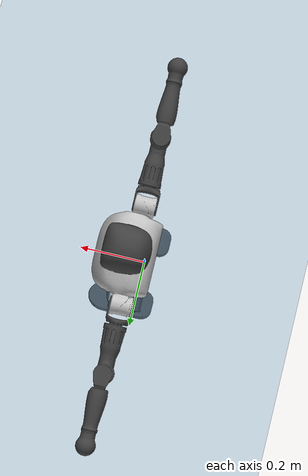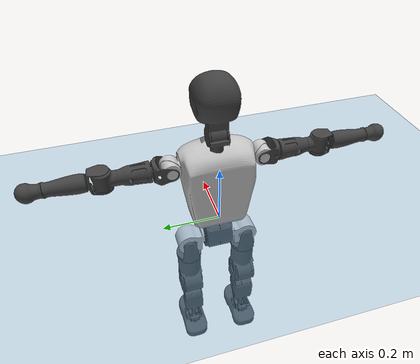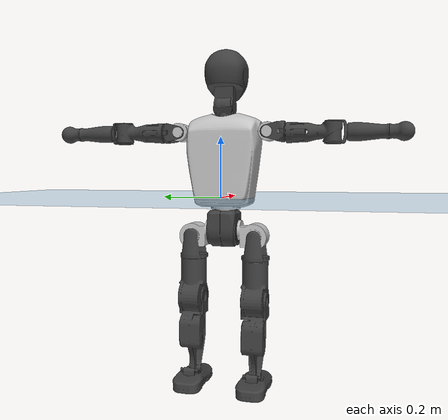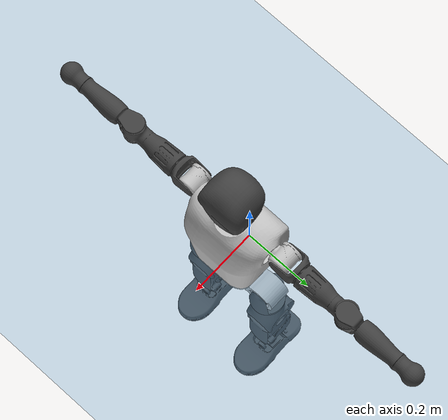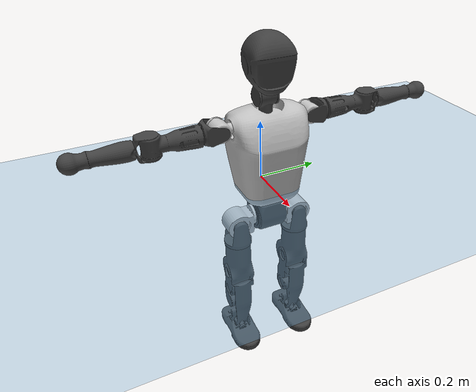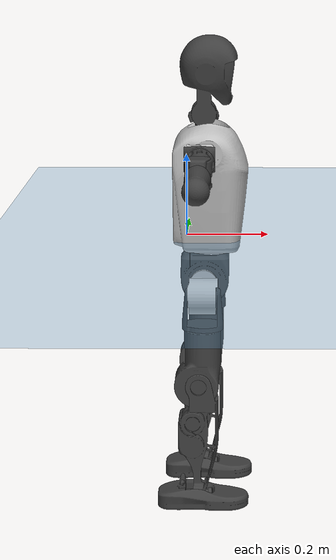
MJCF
<mujoco model="T1">
  <compiler angle="radian" assetdir="assets" balanceinertia="true" inertiafromgeom="false"/>

  <option timestep="0.005" density="1.2" viscosity="2e-05"/>

  <size nkey="1"/>

  <visual>
    <quality shadowsize="8192"/>
    <map shadowclip="0.5"/>
  </visual>

  <default>
    <default class="/">
      <joint armature="0.01" damping="0.01" frictionloss="0.1"/>
      <geom contype="0" conaffinity="0" group="1" solref="-1000 -80"/>
      <site size="0.01 0.005 0.005" group="5"/>
      <general forcelimited="true" biastype="affine" gainprm="25" biasprm="0 -25 -0.6"/>
      <default class="t1">
        <geom rgba="0.25 0.25 0.25 1"/>
        <default class="visual">
          <geom type="mesh" group="2"/>
        </default>
        <default class="collision">
          <geom group="3"/>
        </default>
        <default class="foot">
          <geom size="0.1115 0.05 0.015" type="box" condim="6" group="4" priority="1" solimp="0.015 1 0.015"/>
        </default>
        <default class="reward_collision_sphere">
          <geom group="5" rgba="1 0 0 1"/>
        </default>
      </default>
    </default>
  </default>

  <asset>
    <texture type="skybox" colorspace="auto" name="//unnamed_texture_0" builtin="gradient" rgb1="0.95 0.95 0.95" rgb2="0.95 0.95 0.95" width="100" height="600"/>
    <texture type="2d" colorspace="auto" name="texplane" builtin="checker" rgb1="0.345 0.575 0.748" rgb2="0.345 0.575 0.748" markrgb="1 1 1" width="512" height="512"/>
    <material name="MatPlane" class="/" texture="texplane" texuniform="true" texrepeat="2 2" specular="0.9"/>
    <mesh name="Trunk" class="/" file="Trunk.stl"/>
    <mesh name="H1" class="/" file="H1.stl"/>
    <mesh name="H2" class="/" file="H2.stl"/>
    <mesh name="AL1" class="/" file="AL1.stl"/>
    <mesh name="AL2" class="/" file="AL2.stl"/>
    <mesh name="AL3" class="/" file="AL3.stl"/>
    <mesh name="left_hand_link" class="/" file="left_hand_link.stl"/>
    <mesh name="AR1" class="/" file="AR1.stl"/>
    <mesh name="AR2" class="/" file="AR2.stl"/>
    <mesh name="AR3" class="/" file="AR3.stl"/>
    <mesh name="right_hand_link" class="/" file="right_hand_link.stl"/>
    <mesh name="Waist" class="/" file="Waist.stl"/>
    <mesh name="Hip_Pitch_Left" class="/" file="Hip_Pitch_Left.stl"/>
    <mesh name="Hip_Roll_Left" class="/" file="Hip_Roll_Left.stl"/>
    <mesh name="Hip_Yaw_Left" class="/" file="Hip_Yaw_Left.stl"/>
    <mesh name="Shank_Left" class="/" file="Shank_Left.stl"/>
    <mesh name="Ankle_Cross_Left" class="/" file="Ankle_Cross_Left.stl"/>
    <mesh name="left_foot_link" class="/" file="left_foot_link.stl"/>
    <mesh name="Hip_Pitch_Right" class="/" file="Hip_Pitch_Right.stl"/>
    <mesh name="Hip_Roll_Right" class="/" file="Hip_Roll_Right.stl"/>
    <mesh name="Hip_Yaw_Right" class="/" file="Hip_Yaw_Right.stl"/>
    <mesh name="Shank_Right" class="/" file="Shank_Right.stl"/>
    <mesh name="Ankle_Cross_Right" class="/" file="Ankle_Cross_Right.stl"/>
    <mesh name="right_foot_link" class="/" file="right_foot_link.stl"/>
  </asset>

  <worldbody>
    <geom name="floor" class="/" size="100 100 0.125" type="plane" group="0" material="MatPlane"/>
    <light name="toplight_shadow" class="/" pos="0 0 5" dir="0.0990148 0.0990148 -0.990148" type="directional" ambient="0.04 0.04 0.04" diffuse="0.55 0.55 0.55" specular="0.12 0.12 0.12"/>
    <light name="toplight_fill" class="/" pos="0 0 5" dir="0.0990148 0.0990148 -0.990148" type="directional" castshadow="false" ambient="0.04 0.04 0.04" diffuse="0.3 0.3 0.3" specular="0.08 0.08 0.08"/>
    <body name="trunk" childclass="t1" pos="-0.00268418 -0.00193457 0.00280976" quat="0.999999 0.00080633 0.000735864 -0.000848041">
      <inertial pos="0.0380258 -0.0030825 0.105808" quat="0.999932 -0.00119471 -0.0115564 -0.00102543" mass="8.6065" diaginertia="0.0159824 0.0839194 0.05144"/>
      <joint name="//unnamed_joint_0" type="free" armature="0" damping="0" frictionloss="0"/>
      <geom name="//unnamed_geom_1" class="visual" rgba="0.76 0.76 0.76 1" mesh="Trunk"/>
      <geom name="//unnamed_geom_2" class="collision" size="0.0672312 0.0896417 0.134462" pos="0.0419492 0 0.117664" type="box"/>
      <geom name="//unnamed_geom_3" class="reward_collision_sphere" size="0.103088" pos="0.0419492 0 0.098053"/>
      <geom name="//unnamed_geom_4" class="reward_collision_sphere" size="0.0134462" pos="0.0419492 0.0858132 0"/>
      <geom name="//unnamed_geom_5" class="reward_collision_sphere" size="0.0134462" pos="0.0419492 -0.0858132 0"/>
      <geom name="//unnamed_geom_6" class="reward_collision_sphere" size="0.0134462" pos="0.0419492 0.108024 0.176495"/>
      <geom name="//unnamed_geom_7" class="reward_collision_sphere" size="0.0134462" pos="0.0419492 -0.108024 0.176495"/>
      <site name="imu" pos="-0.0132994 -0.00578357 -0.00505491" size="0.00896417"/>
      <camera name="track" pos="0 -2.01913 0" quat="0.707107 0.707107 0 0" mode="trackcom"/>
      <camera name="ego_camera" pos="0.0852967 0 0.411823" quat="-0.5 -0.5 0.5 0.5"/>
      <body name="H1" pos="0.0443218 -0.000260686 0.238437" quat="0.999999 -0.000456593 -0.00118748 -0.000434039">
        <inertial pos="0.00164179 -0.00219655 0.0590296" quat="0.763056 -0.0145235 0.000869537 0.646168" mass="0.328575" diaginertia="4.13395e-05 0.000245657 0.000133416"/>
        <joint name="AAHead_yaw" pos="0 0 0" axis="0.00298267 0.00407459 0.999987" range="-1.62302 1.57868" armature="0.0102597" damping="0.0102095" frictionloss="0.0787666"/>
        <geom name="//unnamed_geom_8" class="visual" mesh="H1"/>
        <body name="H2" pos="0.00125744 -0.000625651 0.0608502" quat="1 -9.11387e-06 -6.5445e-06 -0.000161037">
          <inertial pos="0.00440955 0.000831276 0.0965516" quat="0.98814 0.105356 -0.0796007 -0.0783771" mass="0.443098" diaginertia="0.000327103 0.0019753 0.00153331"/>
          <joint name="Head_pitch" pos="0 0 0" axis="-0.00172781 -0.999946 0.0102022" range="-1.23228 0.405484" armature="0.00932383" damping="0.00936752" frictionloss="0.078144"/>
          <geom name="//unnamed_geom_9" class="visual" mesh="H2"/>
          <geom name="//unnamed_geom_10" class="collision" size="0.0717133" pos="0.00699153 0 0.107858"/>
          <geom name="//unnamed_geom_11" class="reward_collision_sphere" size="0.0806775" pos="0.0139831 0 0.098053"/>
        </body>
      </body>
      <body name="AL1" pos="0.0382068 0.1058 0.215561" quat="0.999999 2.19831e-05 0.00149786 -0.000202212">
        <inertial pos="-0.000510048 0.047021 -0.000285623" quat="0.505705 0.495778 -0.505532 0.492853" mass="0.377931" diaginertia="0.000228629 0.00135262 0.000260518"/>
        <joint name="Left_Shoulder_Pitch" pos="0 0 0" axis="-0.0030444 0.999975 -0.00633527" stiffness="0.0158679" range="-3.30665 1.1683" armature="0.00812714" damping="0.00890772" frictionloss="0.0901068"/>
        <geom name="//unnamed_geom_12" class="visual" rgba="0.76 0.76 0.76 1" mesh="AL1"/>
        <body name="AL2" pos="-0.000533245 0.0462484 -0.001934" quat="1 -0.00028587 0.000302393 -0.000396127">
          <inertial pos="0.00110305 0.0387664 0.000208393" quat="0.48785 0.511365 -0.488221 0.512004" mass="0.114831" diaginertia="6.66913e-05 0.000351949 0.000159678"/>
          <joint name="Left_Shoulder_Roll" pos="0 0 0" axis="-0.999999 -0.00090859 0.00131428" stiffness="0.00577198" range="-1.55331 1.702" armature="0.00767782" damping="0.00858814" frictionloss="0.0944314"/>
          <geom name="//unnamed_geom_13" class="visual" mesh="AL2"/>
          <body name="AL3" pos="0.0028635 0.0609774 0.000839456" quat="1 -0.000129236 9.78352e-05 0.00018405">
            <inertial pos="8.70582e-07 0.0844661 -0.00268609" quat="0.702347 0.711721 0.00544334 0.0115054" mass="0.702905" diaginertia="0.00205241 0.0131957 0.000543591"/>
            <joint name="Left_Elbow_Pitch" pos="0 0 0" axis="-0.0007759 -0.999951 0.00986986" range="-2.28291 2.26581" armature="0.00936189" damping="0.00520688" frictionloss="0.0994805"/>
            <geom name="//unnamed_geom_14" class="visual" mesh="AL3"/>
            <geom name="//unnamed_geom_15" class="collision" size="0.0268925 0.0672312" pos="0 0.0504783 0" quat="0.707105 0.707108 0 0" type="cylinder"/>
            <geom name="//unnamed_geom_16" class="reward_collision_sphere" size="0.032271"/>
            <body name="left_hand_link" pos="0.00316058 0.148371 0.000224642" quat="0.999999 -0.000759992 -0.000202452 -0.00100798">
              <inertial pos="0.000153319 0.109998 -0.00143121" quat="0.707791 0.706422 -0.000115816 -0.000112121" mass="0.243022" diaginertia="0.0014053 0.00844981 0.000197344"/>
              <joint name="Left_Elbow_Yaw" pos="0 0 0" axis="0.0105742 -0.0132862 0.999856" stiffness="0.00887224" range="-2.44233 -0.0200555" armature="0.00809438" damping="0.00806885" frictionloss="0.101999"/>
              <geom name="//unnamed_geom_17" class="visual" mesh="left_hand_link"/>
              <geom name="//unnamed_geom_18" class="collision" size="0.0268925 0.0784365" pos="0 0.131244 0" quat="0.707105 0.707108 0 0" type="cylinder"/>
              <geom name="//unnamed_geom_19" class="reward_collision_sphere" size="0.0448208"/>
              <geom name="//unnamed_geom_20" class="reward_collision_sphere" size="0.0313746" pos="0 0.111052 0"/>
              <geom name="//unnamed_geom_21" class="reward_collision_sphere" size="0.0313746" pos="0 0.217057 0"/>
            </body>
          </body>
        </body>
      </body>
      <body name="AR1" pos="0.0386832 -0.103427 0.214453" quat="0.999999 0.00124237 0.000524459 0.000278755">
        <inertial pos="-0.00230043 -0.0464757 0.00081049" quat="0.500393 0.497214 -0.507092 0.49522" mass="0.382453" diaginertia="0.000225916 0.00137614 0.000276841"/>
        <joint name="Right_Shoulder_Pitch" pos="0 0 0" axis="-0.000893385 -0.999998 -0.00176944" stiffness="0.00686938" range="-1.26565 3.30884" armature="0.00775503" damping="0.0182251" frictionloss="0.0950632"/>
        <geom name="//unnamed_geom_22" class="visual" rgba="0.76 0.76 0.76 1" mesh="AR1"/>
        <body name="AR2" pos="-0.00101081 -0.0449755 -0.000458413" quat="1 -0.000122842 -0.000310117 0.000144754">
          <inertial pos="0.0013838 -0.0381187 -0.000373273" quat="0.505974 0.481247 -0.522443 0.489332" mass="0.122201" diaginertia="6.64601e-05 0.000368556 0.000160876"/>
          <joint name="Right_Shoulder_Roll" pos="0 0 0" axis="-1 1.24986e-05 1.88408e-05" range="-1.77942 1.59548" armature="0.00903989" damping="0.0012344" frictionloss="0.0917728"/>
          <geom name="//unnamed_geom_23" class="visual" mesh="AR2"/>
          <body name="AR3" pos="0.00211249 -0.0608823 -0.0035588" quat="1 1.31434e-05 -5.24269e-05 -0.000124985">
            <inertial pos="0.00219897 -0.0889946 -0.000358966" quat="0.707732 0.706481 -1.10164e-05 -7.5645e-05" mass="0.749212" diaginertia="0.00220964 0.0142409 0.00060011"/>
            <joint name="Right_Elbow_Pitch" pos="0 0 0" axis="0.01103 0.999926 0.00505277" range="-2.28223 2.25664" armature="0.00927677" damping="0.00946098" frictionloss="0.0853512"/>
            <geom name="//unnamed_geom_24" class="visual" mesh="AR3"/>
            <geom name="//unnamed_geom_25" class="collision" size="0.0268925 0.0672312" pos="0 -0.0504783 0" quat="0.707105 0.707108 0 0" type="cylinder"/>
            <geom name="//unnamed_geom_26" class="reward_collision_sphere" size="0.032271"/>
            <body name="right_hand_link" pos="-0.00112072 -0.148638 -0.000473758" quat="0.999999 0.000460198 -0.000233663 0.00122414">
              <inertial pos="-0.0017037 -0.109504 0.000727738" quat="0.706032 0.70818 0.000113959 0.000451104" mass="0.234494" diaginertia="0.00135524 0.00852873 0.0002028"/>
              <joint name="Right_Elbow_Yaw" pos="0 0 0" axis="-0.00866131 -0.00435938 0.999953" range="-0.0176325 2.44018" armature="0.00855053" damping="0" frictionloss="0.0984117"/>
              <geom name="//unnamed_geom_27" class="visual" mesh="right_hand_link"/>
              <geom name="//unnamed_geom_28" class="collision" size="0.0268925 0.0784365" pos="0 -0.131244 0" quat="0.707105 0.707108 0 0" type="cylinder"/>
              <geom name="//unnamed_geom_29" class="reward_collision_sphere" size="0.0448208"/>
              <geom name="//unnamed_geom_30" class="reward_collision_sphere" size="0.0313746" pos="0 -0.111052 0"/>
              <geom name="//unnamed_geom_31" class="reward_collision_sphere" size="0.0313746" pos="0 -0.217057 0"/>
            </body>
          </body>
        </body>
      </body>
      <body name="Waist" pos="0.0475614 0.00122543 -0.112555" quat="0.999999 -0.000626508 0.000845338 -0.000645181">
        <inertial pos="0.00296908 -0.00160139 0.0100684" quat="0.985159 -0.00292498 -0.171445 -0.00778957" mass="1.79125" diaginertia="0.000872403 0.00557775 0.00427387"/>
        <joint name="Waist" pos="0 0 0" axis="0.0071301 0.00439368 0.999965" stiffness="0.00807846" range="-1.56906 1.58538" armature="0.0100937" damping="0.0139095" frictionloss="0.0824142"/>
        <geom name="//unnamed_geom_32" class="visual" mesh="Waist"/>
        <body name="Hip_Pitch_Left" pos="0.00259025 0.107501 -0.00291087" quat="0.999999 -0.000115175 -0.000724293 -0.00137247">
          <inertial pos="0.000630079 -0.00478081 -0.0189001" quat="0.975108 0.22122 0.0148808 0.00227882" mass="0.753828" diaginertia="0.000296259 0.00150967 0.00116593"/>
          <joint name="Left_Hip_Pitch" pos="0 0 0" axis="-0.0148611 0.999833 0.0106567" stiffness="0.00439177" range="-1.80137 1.59147" armature="0.00924292" damping="0.00537552" frictionloss="0.0864101"/>
          <geom name="//unnamed_geom_33" class="visual" rgba="0.76 0.76 0.76 1" mesh="Hip_Pitch_Left"/>
          <body name="Hip_Roll_Left" pos="-0.00018283 0.00162706 -0.0190362" quat="0.999999 5.48498e-05 0.000558553 -0.000845629">
            <inertial pos="-0.00166517 0.00179164 -0.0519664" quat="0.714223 -0.0105766 -0.00161018 0.699837" mass="0.288029" diaginertia="0.000294677 0.00156767 0.000469904"/>
            <joint name="Left_Hip_Roll" pos="0 0 0" axis="-0.999936 -0.00167135 -0.0111723" range="-1.54996 0.256827" armature="0.00840149" damping="0.0146237" frictionloss="0.0788577"/>
            <geom name="//unnamed_geom_34" class="visual" mesh="Hip_Roll_Left"/>
            <geom name="//unnamed_geom_35" class="reward_collision_sphere" size="0.0493029"/>
            <body name="Hip_Yaw_Left" pos="-0.0019711 0.00147939 -0.078787" quat="1 -0.000744792 -0.000162463 -4.17595e-05">
              <inertial pos="-0.0046111 -9.86156e-05 -0.0877109" quat="0.697079 -0.0319919 -0.0321127 0.71556" mass="1.46845" diaginertia="0.00412998 0.0257944 0.00219611"/>
              <joint name="Left_Hip_Yaw" pos="0 0 0" axis="-0.00451445 -0.000265759 -0.99999" range="-0.948872 0.96492" armature="0.00913324" damping="0.0177631" frictionloss="0.0859975"/>
              <geom name="//unnamed_geom_36" class="visual" mesh="Hip_Yaw_Left"/>
              <geom name="//unnamed_geom_37" class="collision" size="0.0448208 0.0717133" type="cylinder"/>
              <body name="Shank_Left" pos="-0.00623341 0.00058355 -0.133248" quat="1 0.000184501 4.0859e-05 -0.000282714">
                <inertial pos="-0.002979 1.76902e-05 -0.121986" quat="0.997574 0.00118342 -0.0240425 0.0653268" mass="1.26342" diaginertia="0.00584435 0.0362505 0.0017016"/>
                <joint name="Left_Knee_Pitch" pos="0 0 0" axis="0.00294419 0.99997 0.00712418" stiffness="0.000919041" range="0.0546999 2.34326" armature="0.0100394" damping="0.0247487" frictionloss="0.0855523"/>
                <geom name="//unnamed_geom_38" class="visual" mesh="Shank_Left"/>
                <geom name="//unnamed_geom_39" class="collision" size="0.0448208 0.0672312" pos="0 0 -0.117664" type="cylinder"/>
                <geom name="//unnamed_geom_40" class="reward_collision_sphere" size="0.0582671"/>
                <body name="Ankle_Cross_Left" pos="0.00266838 0.000962449 -0.277212" quat="1 3.81844e-06 -2.71804e-05 -1.42116e-05">
                  <inertial pos="-0.00164831 0.000675702 -0.00508364" quat="0.445087 0.550106 0.54864 0.445281" mass="0.0513903" diaginertia="5.0108e-06 2.71663e-05 1.03752e-05"/>
                  <joint name="Left_Ankle_Pitch" pos="0 0 0" axis="0.00171581 0.999998 -0.000241331" stiffness="0.00192252" range="-0.92168 0.316001" armature="0.00909206" damping="0.0140156" frictionloss="0.0770829"/>
                  <geom name="//unnamed_geom_41" class="visual" mesh="Ankle_Cross_Left"/>
                  <body name="left_foot_link" pos="0.000574639 0.0024592 -0.0119783" quat="1 8.4141e-06 -4.67527e-07 9.2433e-06">
                    <inertial pos="0.00073532 -0.00101605 -0.0115299" quat="-0.00604094 0.626138 -0.00106174 0.779688" mass="0.514581" diaginertia="0.000467069 0.00258832 0.00199758"/>
                    <joint name="Left_Ankle_Roll" pos="0 0 0" axis="-0.999928 0.0102907 0.00620587" range="-0.434394 0.384929" armature="0.00895714" damping="0" frictionloss="0.10101"/>
                    <geom name="//unnamed_geom_42" class="visual" mesh="left_foot_link"/>
                    <geom name="left_foot" class="foot" size="0.106794 0.0402613 0.0137795" pos="0.00699153 0 -0.0147079"/>
                    <geom name="//unnamed_geom_44" class="reward_collision_sphere" size="0.0466137" pos="0.00699153 0 -0.0147079"/>
                    <geom name="//unnamed_geom_45" class="reward_collision_sphere" size="0.0268925" pos="0.0664195 -0.02322 -0.0147079"/>
                    <geom name="//unnamed_geom_46" class="reward_collision_sphere" size="0.0268925" pos="-0.0489407 -0.02322 -0.0147079"/>
                    <site name="left_foot" class="foot" pos="0.00699153 0 -0.0147079" size="0.00896417"/>
                  </body>
                </body>
              </body>
            </body>
          </body>
        </body>
        <body name="Hip_Pitch_Right" pos="-0.00245982 -0.107282 -0.00139726" quat="0.999999 0.000467665 0.00134751 -0.000367351">
          <inertial pos="-0.00248295 0.00554398 -0.0157663" quat="0.972775 -0.231038 0.0179426 -0.0027331" mass="0.736746" diaginertia="0.000310854 0.0015966 0.00115658"/>
          <joint name="Right_Hip_Pitch" pos="0 0 0" axis="-0.00713658 -0.999944 0.00783831" range="-1.5767 1.81579" armature="0.00930817" damping="0" frictionloss="0.10017"/>
          <geom name="//unnamed_geom_47" class="visual" rgba="0.76 0.76 0.76 1" mesh="Hip_Pitch_Right"/>
          <body name="Hip_Roll_Right" pos="0.00122731 -0.00174582 -0.022159" quat="1 -4.7423e-06 5.45512e-05 -1.4601e-05">
            <inertial pos="-0.000511759 -0.00302696 -0.0546436" quat="0.704141 -0.0097834 0.00691995 0.709959" mass="0.285766" diaginertia="0.000293118 0.00160729 0.000456647"/>
            <joint name="Right_Hip_Roll" pos="0 0 0" axis="-0.999999 -0.00152226 0.000214512" stiffness="0.00259794" range="-0.255245 1.55204" armature="0.0103369" damping="0.0136713" frictionloss="0.0770142"/>
            <geom name="//unnamed_geom_48" class="visual" mesh="Hip_Roll_Right"/>
            <geom name="//unnamed_geom_49" class="reward_collision_sphere" size="0.0493029"/>
            <body name="Hip_Yaw_Right" pos="-0.00233957 -1.18326e-05 -0.0811082" quat="1 0.000184367 -1.24157e-05 -4.08876e-05">
              <inertial pos="-0.00475958 -0.00164867 -0.0872659" quat="0.716253 -0.0318411 -0.0374111 0.696109" mass="1.56756" diaginertia="0.00424198 0.0274703 0.00233409"/>
              <joint name="Right_Hip_Yaw" pos="0 0 0" axis="-0.00439568 -0.00246825 -0.999987" range="-1.01241 1.01007" armature="0.00895705" damping="0" frictionloss="0.0854105"/>
              <geom name="//unnamed_geom_50" class="visual" mesh="Hip_Yaw_Right"/>
              <geom name="//unnamed_geom_51" class="collision" size="0.0448208 0.0717133" type="cylinder"/>
              <body name="Shank_Right" pos="-0.00914376 -0.00049279 -0.134306" quat="1 2.36356e-05 0.000129004 -3.40066e-05">
                <inertial pos="-0.00402104 -0.00104815 -0.117905" quat="0.999606 -0.000767488 -0.0200104 -0.0196447" mass="1.29215" diaginertia="0.00581382 0.035511 0.00172025"/>
                <joint name="Right_Knee_Pitch" pos="0 0 0" axis="0.00199104 -0.999996 -0.00217995" range="-2.33843 0.00328483" armature="0.00979464" damping="0.0155108" frictionloss="0.102232"/>
                <geom name="//unnamed_geom_52" class="visual" mesh="Shank_Right"/>
                <geom name="//unnamed_geom_53" class="collision" size="0.0448208 0.0672312" pos="0 0 -0.117664" type="cylinder"/>
                <geom name="//unnamed_geom_54" class="reward_collision_sphere" size="0.0582671"/>
                <body name="Ankle_Cross_Right" pos="0.00309065 0.0017942 -0.274788" quat="1 -0.000763022 -0.000145362 -0.000603357">
                  <inertial pos="-0.000250409 0.00284146 -0.0080423" quat="0.448686 0.540567 0.55073 0.450739" mass="0.0511829" diaginertia="4.98185e-06 2.68124e-05 9.92394e-06"/>
                  <joint name="Right_Ankle_Pitch" pos="0 0 0" axis="0.00244001 -0.999997 0.000842623" range="-0.399275 0.851732" armature="0.0096093" damping="0.0144556" frictionloss="0.0993363"/>
                  <geom name="//unnamed_geom_55" class="visual" mesh="Ankle_Cross_Right"/>
                  <body name="right_foot_link" pos="-0.000950422 -0.00270685 -0.00962859" quat="1 -9.75574e-05 0.000400418 -0.000267046">
                    <inertial pos="4.75262e-05 0.000255583 -0.00632193" quat="0.00923816 0.617845 0.00398366 0.786236" mass="0.487939" diaginertia="0.000445827 0.00251975 0.00190625"/>
                    <joint name="Right_Ankle_Roll" pos="0 0 0" axis="-0.999959 0.00839011 -0.00339968" range="-0.444458 0.388596" armature="0.0101541" damping="0.0151729" frictionloss="0.0866395"/>
                    <geom name="//unnamed_geom_56" class="visual" mesh="right_foot_link"/>
                    <geom name="right_foot" class="foot" size="0.103096 0.0393931 0.0121778" pos="0.00699153 0 -0.0147079"/>
                    <geom name="//unnamed_geom_58" class="reward_collision_sphere" size="0.0358567"/>
                    <geom name="//unnamed_geom_59" class="reward_collision_sphere" size="0.0268925" pos="0.00699153 0 -0.0147079"/>
                    <geom name="//unnamed_geom_60" class="reward_collision_sphere" size="0.0268925" pos="0.0664195 0.02322 -0.0147079"/>
                    <geom name="//unnamed_geom_61" class="reward_collision_sphere" size="0.0268925" pos="-0.0489407 0.02322 -0.0147079"/>
                    <site name="right_foot" class="foot" pos="0.00699153 0 -0.0147079" size="0.00896417"/>
                  </body>
                </body>
              </body>
            </body>
          </body>
        </body>
      </body>
    </body>
  </worldbody>

  <contact>
    <pair class="/" geom1="floor" geom2="left_foot" name="//unnamed_contact_0"/>
    <pair class="/" geom1="floor" geom2="right_foot" name="//unnamed_contact_1"/>
  </contact>

  <actuator>
    <general name="AAHead_yaw" class="/" joint="AAHead_yaw" forcerange="-5.97817 5.97817" gainprm="21.3436" biasprm="0 -21.3436 -0.535129"/>
    <general name="Head_pitch" class="/" joint="Head_pitch" forcerange="-6.87345 6.87345" gainprm="21.3436" biasprm="0 -21.3436 -0.535129"/>
    <general name="Left_Shoulder_Pitch" class="/" joint="Left_Shoulder_Pitch" forcerange="-15.6392 15.6392" gainprm="21.3436" biasprm="0 -21.3436 -0.535129"/>
    <general name="Left_Shoulder_Roll" class="/" joint="Left_Shoulder_Roll" forcerange="-17.5651 17.5651" gainprm="21.3436" biasprm="0 -21.3436 -0.535129"/>
    <general name="Left_Elbow_Pitch" class="/" joint="Left_Elbow_Pitch" forcerange="-17.4178 17.4178" gainprm="21.3436" biasprm="0 -21.3436 -0.535129"/>
    <general name="Left_Elbow_Yaw" class="/" joint="Left_Elbow_Yaw" forcerange="-16.1005 16.1005" gainprm="21.3436" biasprm="0 -21.3436 -0.535129"/>
    <general name="Right_Shoulder_Pitch" class="/" joint="Right_Shoulder_Pitch" forcerange="-16.0903 16.0903" gainprm="21.3436" biasprm="0 -21.3436 -0.535129"/>
    <general name="Right_Shoulder_Roll" class="/" joint="Right_Shoulder_Roll" forcerange="-17.3901 17.3901" gainprm="21.3436" biasprm="0 -21.3436 -0.535129"/>
    <general name="Right_Elbow_Pitch" class="/" joint="Right_Elbow_Pitch" forcerange="-17.7926 17.7926" gainprm="21.3436" biasprm="0 -21.3436 -0.535129"/>
    <general name="Right_Elbow_Yaw" class="/" joint="Right_Elbow_Yaw" forcerange="-14.7486 14.7486" gainprm="21.3436" biasprm="0 -21.3436 -0.535129"/>
    <general name="Waist" class="/" joint="Waist" forcerange="-27.0502 27.0502" gainprm="21.3436" biasprm="0 -21.3436 -0.535129"/>
    <general name="Left_Hip_Pitch" class="/" joint="Left_Hip_Pitch" forcerange="-44.4084 44.4084" gainprm="21.3436" biasprm="0 -21.3436 -0.535129"/>
    <general name="Left_Hip_Roll" class="/" joint="Left_Hip_Roll" forcerange="-26.6988 26.6988" gainprm="21.3436" biasprm="0 -21.3436 -0.535129"/>
    <general name="Left_Hip_Yaw" class="/" joint="Left_Hip_Yaw" forcerange="-29.241 29.241" gainprm="21.3436" biasprm="0 -21.3436 -0.535129"/>
    <general name="Left_Knee_Pitch" class="/" joint="Left_Knee_Pitch" forcerange="-53.9522 53.9522" gainprm="21.3436" biasprm="0 -21.3436 -0.535129"/>
    <general name="Left_Ankle_Pitch" class="/" joint="Left_Ankle_Pitch" forcerange="-19.1796 19.1796" gainprm="21.3436" biasprm="0 -21.3436 -0.535129"/>
    <general name="Left_Ankle_Roll" class="/" joint="Left_Ankle_Roll" forcerange="-13.3906 13.3906" gainprm="21.3436" biasprm="0 -21.3436 -0.535129"/>
    <general name="Right_Hip_Pitch" class="/" joint="Right_Hip_Pitch" forcerange="-41.7724 41.7724" gainprm="21.3436" biasprm="0 -21.3436 -0.535129"/>
    <general name="Right_Hip_Roll" class="/" joint="Right_Hip_Roll" forcerange="-27.1699 27.1699" gainprm="21.3436" biasprm="0 -21.3436 -0.535129"/>
    <general name="Right_Hip_Yaw" class="/" joint="Right_Hip_Yaw" forcerange="-25.7789 25.7789" gainprm="21.3436" biasprm="0 -21.3436 -0.535129"/>
    <general name="Right_Knee_Pitch" class="/" joint="Right_Knee_Pitch" forcerange="-47.9699 47.9699" gainprm="21.3436" biasprm="0 -21.3436 -0.535129"/>
    <general name="Right_Ankle_Pitch" class="/" joint="Right_Ankle_Pitch" forcerange="-16.5277 16.5277" gainprm="21.3436" biasprm="0 -21.3436 -0.535129"/>
    <general name="Right_Ankle_Roll" class="/" joint="Right_Ankle_Roll" forcerange="-14.8324 14.8324" gainprm="21.3436" biasprm="0 -21.3436 -0.535129"/>
  </actuator>

  <sensor>
    <gyro site="imu" name="imu_angular_velocity"/>
    <velocimeter site="imu" name="imu_linear_velocity"/>
    <framelinvel objtype="site" objname="left_foot" name="left_foot_global_linear_velocity"/>
    <framelinvel objtype="site" objname="right_foot" name="right_foot_global_linear_velocity"/>
  </sensor>

  <keyframe>
    <key name="home" qpos="0 0 0.6385 1 0 0 0 0 0 0 1.4 0 -0.4 0 -1.4 0 0.4 0 -0.4 0 0 0.8 -0.4 0 0.4 0 0 -0.8 0.4 0"/>
  </keyframe>
</mujoco>
